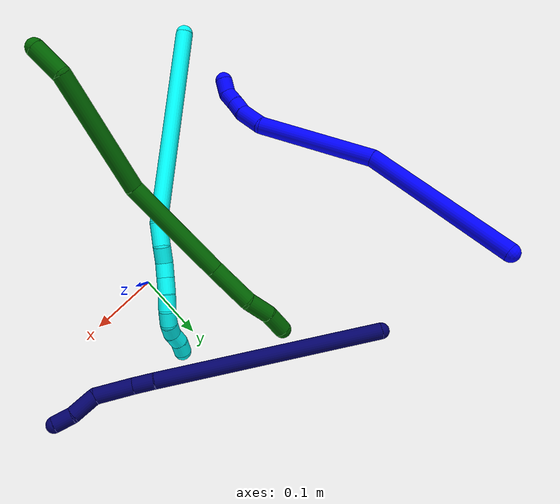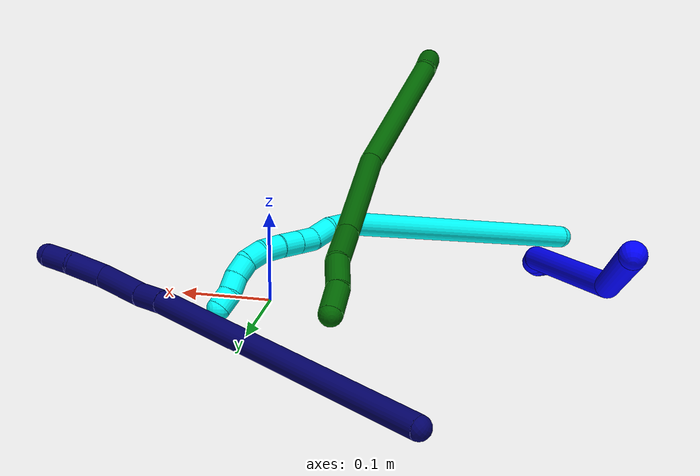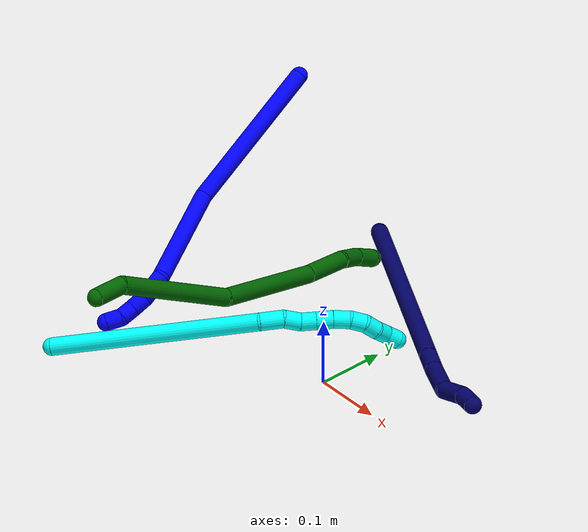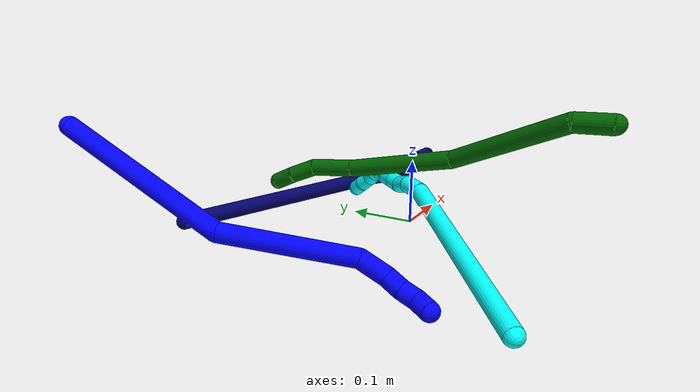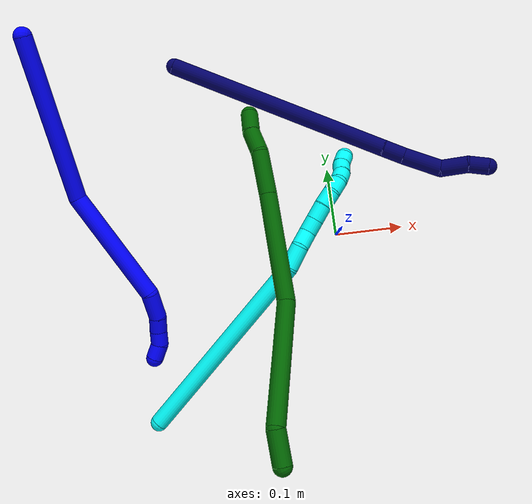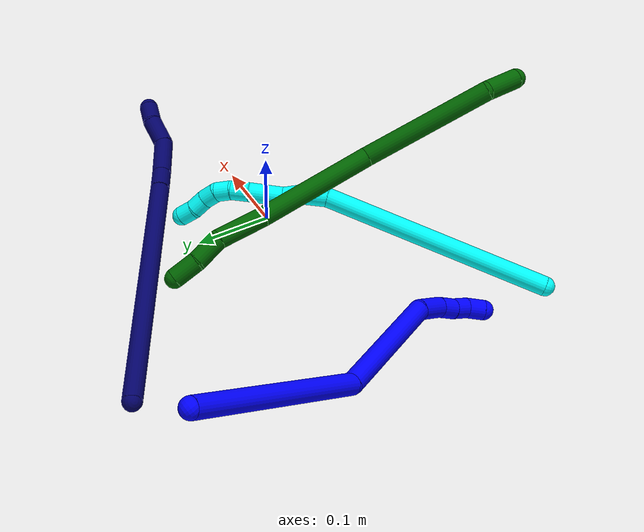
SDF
<sdf version="1.7">
 <world name="default">
  <model name="1">
   <static>0</static>
   <link name="1">
    <collision name="collision-cylinder-e_1_1_4">
     <pose>0.048468 -0.07131 -0.075218 2.38286 0.437412 1.01717</pose>
     <geometry><cylinder><radius>0.0125</radius><length>0.228841</length></cylinder></geometry>
     <surface>
      <friction><ode><mu>1.16</mu><mu2>1.16</mu2><slip1>0</slip1><slip2>0</slip2></ode></friction>
      <contact><ode><kp>1e+06</kp><kd>1</kd><max_vel>0</max_vel><min_depth>0.001</min_depth></ode></contact>
     </surface>
    </collision>
    <visual name="visual-cylinder-e_1_1_4">
     <pose>0.048468 -0.07131 -0.075218 2.38286 0.437412 1.01717</pose>
     <geometry><cylinder><radius>0.0125</radius><length>0.228841</length></cylinder></geometry>
     <material><ambient>0 0 1 1</ambient></material>
    </visual>
    <collision name="collision-cylinder-e_2_4_5">
     <pose>0.094325 -0.197481 -0.21391 2.42883 -0.031115 -0.083538</pose>
     <geometry><cylinder><radius>0.0125</radius><length>0.167875</length></cylinder></geometry>
     <surface>
      <friction><ode><mu>1.16</mu><mu2>1.16</mu2><slip1>0</slip1><slip2>0</slip2></ode></friction>
      <contact><ode><kp>1e+06</kp><kd>1</kd><max_vel>0</max_vel><min_depth>0.001</min_depth></ode></contact>
     </surface>
    </collision>
    <visual name="visual-cylinder-e_2_4_5">
     <pose>0.094325 -0.197481 -0.21391 2.42883 -0.031115 -0.083538</pose>
     <geometry><cylinder><radius>0.0125</radius><length>0.167875</length></cylinder></geometry>
     <material><ambient>0 0 1 1</ambient></material>
    </visual>
    <collision name="collision-cylinder-e_3_5_6">
     <pose>0.09937 -0.264411 -0.289961 2.3769 0.413858 0.962252</pose>
     <geometry><cylinder><radius>0.0125</radius><length>0.038077</length></cylinder></geometry>
     <surface>
      <friction><ode><mu>1.16</mu><mu2>1.16</mu2><slip1>0</slip1><slip2>0</slip2></ode></friction>
      <contact><ode><kp>1e+06</kp><kd>1</kd><max_vel>0</max_vel><min_depth>0.001</min_depth></ode></contact>
     </surface>
    </collision>
    <visual name="visual-cylinder-e_3_5_6">
     <pose>0.09937 -0.264411 -0.289961 2.3769 0.413858 0.962252</pose>
     <geometry><cylinder><radius>0.0125</radius><length>0.038077</length></cylinder></geometry>
     <material><ambient>0 0 1 1</ambient></material>
    </visual>
    <collision name="collision-cylinder-e_4_6_7">
     <pose>0.113656 -0.281678 -0.309768 2.5181 0.640002 1.59875</pose>
     <geometry><cylinder><radius>0.0125</radius><length>0.022202</length></cylinder></geometry>
     <surface>
      <friction><ode><mu>1.16</mu><mu2>1.16</mu2><slip1>0</slip1><slip2>0</slip2></ode></friction>
      <contact><ode><kp>1e+06</kp><kd>1</kd><max_vel>0</max_vel><min_depth>0.001</min_depth></ode></contact>
     </surface>
    </collision>
    <visual name="visual-cylinder-e_4_6_7">
     <pose>0.113656 -0.281678 -0.309768 2.5181 0.640002 1.59875</pose>
     <geometry><cylinder><radius>0.0125</radius><length>0.022202</length></cylinder></geometry>
     <material><ambient>0 0 1 1</ambient></material>
    </visual>
    <collision name="collision-cylinder-e_5_7_8">
     <pose>0.125444 -0.291468 -0.324789 2.60912 0.518392 1.54273</pose>
     <geometry><cylinder><radius>0.0125</radius><length>0.020824</length></cylinder></geometry>
     <surface>
      <friction><ode><mu>1.16</mu><mu2>1.16</mu2><slip1>0</slip1><slip2>0</slip2></ode></friction>
      <contact><ode><kp>1e+06</kp><kd>1</kd><max_vel>0</max_vel><min_depth>0.001</min_depth></ode></contact>
     </surface>
    </collision>
    <visual name="visual-cylinder-e_5_7_8">
     <pose>0.125444 -0.291468 -0.324789 2.60912 0.518392 1.54273</pose>
     <geometry><cylinder><radius>0.0125</radius><length>0.020824</length></cylinder></geometry>
     <material><ambient>0 0 1 1</ambient></material>
    </visual>
    <collision name="collision-cylinder-e_6_8_2">
     <pose>0.138305 -0.296747 -0.340531 3.05535 0.767705 2.92875</pose>
     <geometry><cylinder><radius>0.0125</radius><length>0.022182</length></cylinder></geometry>
     <surface>
      <friction><ode><mu>1.16</mu><mu2>1.16</mu2><slip1>0</slip1><slip2>0</slip2></ode></friction>
      <contact><ode><kp>1e+06</kp><kd>1</kd><max_vel>0</max_vel><min_depth>0.001</min_depth></ode></contact>
     </surface>
    </collision>
    <visual name="visual-cylinder-e_6_8_2">
     <pose>0.138305 -0.296747 -0.340531 3.05535 0.767705 2.92875</pose>
     <geometry><cylinder><radius>0.0125</radius><length>0.022182</length></cylinder></geometry>
     <material><ambient>0 0 1 1</ambient></material>
    </visual>
    <collision name="collision-sphere-2">
     <pose>0.146008 -0.297434 -0.348481 0 -0 0</pose>
     <geometry><sphere><radius>0.0125</radius></sphere></geometry>
     <surface>
      <friction><ode><mu>1.16</mu><mu2>1.16</mu2><slip1>0</slip1><slip2>0</slip2></ode></friction>
      <contact><ode><kp>1e+06</kp><kd>1</kd><max_vel>0</max_vel><min_depth>0.001</min_depth></ode></contact>
     </surface>
    </collision>
    <visual name="visual-sphere-2">
     <pose>0.146008 -0.297434 -0.348481 0 -0 0</pose>
     <geometry><sphere><radius>0.0125</radius></sphere></geometry>
     <material><ambient>0 0 1 1</ambient></material>
    </visual>
    <collision name="collision-sphere-4">
     <pose>0.096936 -0.142619 -0.150437 0 -0 0</pose>
     <geometry><sphere><radius>0.0125</radius></sphere></geometry>
     <surface>
      <friction><ode><mu>1.16</mu><mu2>1.16</mu2><slip1>0</slip1><slip2>0</slip2></ode></friction>
      <contact><ode><kp>1e+06</kp><kd>1</kd><max_vel>0</max_vel><min_depth>0.001</min_depth></ode></contact>
     </surface>
    </collision>
    <visual name="visual-sphere-4">
     <pose>0.096936 -0.142619 -0.150437 0 -0 0</pose>
     <geometry><sphere><radius>0.0125</radius></sphere></geometry>
     <material><ambient>0 0 1 1</ambient></material>
    </visual>
    <collision name="collision-sphere-1">
     <geometry><sphere><radius>0.0125</radius></sphere></geometry>
     <surface>
      <friction><ode><mu>1.16</mu><mu2>1.16</mu2><slip1>0</slip1><slip2>0</slip2></ode></friction>
      <contact><ode><kp>1e+06</kp><kd>1</kd><max_vel>0</max_vel><min_depth>0.001</min_depth></ode></contact>
     </surface>
    </collision>
    <visual name="visual-sphere-1">
     <geometry><sphere><radius>0.0125</radius></sphere></geometry>
     <material><ambient>0 0 1 1</ambient></material>
    </visual>
    <collision name="collision-sphere-8">
     <pose>0.130603 -0.29606 -0.33258 0 -0 0</pose>
     <geometry><sphere><radius>0.0125</radius></sphere></geometry>
     <surface>
      <friction><ode><mu>1.16</mu><mu2>1.16</mu2><slip1>0</slip1><slip2>0</slip2></ode></friction>
      <contact><ode><kp>1e+06</kp><kd>1</kd><max_vel>0</max_vel><min_depth>0.001</min_depth></ode></contact>
     </surface>
    </collision>
    <visual name="visual-sphere-8">
     <pose>0.130603 -0.29606 -0.33258 0 -0 0</pose>
     <geometry><sphere><radius>0.0125</radius></sphere></geometry>
     <material><ambient>0 0 1 1</ambient></material>
    </visual>
    <collision name="collision-sphere-5">
     <pose>0.091714 -0.252343 -0.277383 0 -0 0</pose>
     <geometry><sphere><radius>0.0125</radius></sphere></geometry>
     <surface>
      <friction><ode><mu>1.16</mu><mu2>1.16</mu2><slip1>0</slip1><slip2>0</slip2></ode></friction>
      <contact><ode><kp>1e+06</kp><kd>1</kd><max_vel>0</max_vel><min_depth>0.001</min_depth></ode></contact>
     </surface>
    </collision>
    <visual name="visual-sphere-5">
     <pose>0.091714 -0.252343 -0.277383 0 -0 0</pose>
     <geometry><sphere><radius>0.0125</radius></sphere></geometry>
     <material><ambient>0 0 1 1</ambient></material>
    </visual>
    <collision name="collision-sphere-6">
     <pose>0.107026 -0.27648 -0.30254 0 -0 0</pose>
     <geometry><sphere><radius>0.0125</radius></sphere></geometry>
     <surface>
      <friction><ode><mu>1.16</mu><mu2>1.16</mu2><slip1>0</slip1><slip2>0</slip2></ode></friction>
      <contact><ode><kp>1e+06</kp><kd>1</kd><max_vel>0</max_vel><min_depth>0.001</min_depth></ode></contact>
     </surface>
    </collision>
    <visual name="visual-sphere-6">
     <pose>0.107026 -0.27648 -0.30254 0 -0 0</pose>
     <geometry><sphere><radius>0.0125</radius></sphere></geometry>
     <material><ambient>0 0 1 1</ambient></material>
    </visual>
    <collision name="collision-sphere-7">
     <pose>0.120285 -0.286877 -0.316997 0 -0 0</pose>
     <geometry><sphere><radius>0.0125</radius></sphere></geometry>
     <surface>
      <friction><ode><mu>1.16</mu><mu2>1.16</mu2><slip1>0</slip1><slip2>0</slip2></ode></friction>
      <contact><ode><kp>1e+06</kp><kd>1</kd><max_vel>0</max_vel><min_depth>0.001</min_depth></ode></contact>
     </surface>
    </collision>
    <visual name="visual-sphere-7">
     <pose>0.120285 -0.286877 -0.316997 0 -0 0</pose>
     <geometry><sphere><radius>0.0125</radius></sphere></geometry>
     <material><ambient>0 0 1 1</ambient></material>
    </visual>
    <inertial>
     <pose>0.077827 -0.156889 -0.170717 0 -0 0</pose>
     <mass>0.5</mass>
     <inertia>
      <ixx>0.001643</ixx>
      <ixy>0</ixy>
      <ixz>0</ixz>
      <iyy>0.000293</iyy>
      <iyz>0</iyz>
      <izz>0.000448</izz>
     </inertia>
    </inertial>
   </link>
   <pose>-0.387751 0.288505 0.190858 2.02529 0.636379 -2.80656</pose>
  </model>
  <model name="3">
   <static>0</static>
   <link name="3">
    <collision name="collision-cylinder-e_1_1_4">
     <pose>-0.005827 -0.00252 -0.147366 3.1245 -0.039512 -2.32493</pose>
     <geometry><cylinder><radius>0.0125</radius><length>0.295006</length></cylinder></geometry>
     <surface>
      <friction><ode><mu>1.16</mu><mu2>1.16</mu2><slip1>0</slip1><slip2>0</slip2></ode></friction>
      <contact><ode><kp>1e+06</kp><kd>1</kd><max_vel>0</max_vel><min_depth>0.001</min_depth></ode></contact>
     </surface>
    </collision>
    <visual name="visual-cylinder-e_1_1_4">
     <pose>-0.005827 -0.00252 -0.147366 3.1245 -0.039512 -2.32493</pose>
     <geometry><cylinder><radius>0.0125</radius><length>0.295006</length></cylinder></geometry>
     <material><ambient>0.003922 1 0.996078 1</ambient></material>
    </visual>
    <collision name="collision-cylinder-e_2_4_5">
     <pose>-0.007733 -0.005914 -0.310578 3.08644 0.242151 2.69575</pose>
     <geometry><cylinder><radius>0.0125</radius><length>0.032694</length></cylinder></geometry>
     <surface>
      <friction><ode><mu>1.16</mu><mu2>1.16</mu2><slip1>0</slip1><slip2>0</slip2></ode></friction>
      <contact><ode><kp>1e+06</kp><kd>1</kd><max_vel>0</max_vel><min_depth>0.001</min_depth></ode></contact>
     </surface>
    </collision>
    <visual name="visual-cylinder-e_2_4_5">
     <pose>-0.007733 -0.005914 -0.310578 3.08644 0.242151 2.69575</pose>
     <geometry><cylinder><radius>0.0125</radius><length>0.032694</length></cylinder></geometry>
     <material><ambient>0.003922 1 0.996078 1</ambient></material>
    </visual>
    <collision name="collision-cylinder-e_3_5_6">
     <pose>0.001224 -0.004181 -0.336895 -2.89754 0.436748 -2.13187</pose>
     <geometry><cylinder><radius>0.0125</radius><length>0.023818</length></cylinder></geometry>
     <surface>
      <friction><ode><mu>1.16</mu><mu2>1.16</mu2><slip1>0</slip1><slip2>0</slip2></ode></friction>
      <contact><ode><kp>1e+06</kp><kd>1</kd><max_vel>0</max_vel><min_depth>0.001</min_depth></ode></contact>
     </surface>
    </collision>
    <visual name="visual-cylinder-e_3_5_6">
     <pose>0.001224 -0.004181 -0.336895 -2.89754 0.436748 -2.13187</pose>
     <geometry><cylinder><radius>0.0125</radius><length>0.023818</length></cylinder></geometry>
     <material><ambient>0.003922 1 0.996078 1</ambient></material>
    </visual>
    <collision name="collision-cylinder-e_4_6_7">
     <pose>0.008571 -0.001593 -0.357797 3.13978 0.217905 3.12497</pose>
     <geometry><cylinder><radius>0.0125</radius><length>0.021366</length></cylinder></geometry>
     <surface>
      <friction><ode><mu>1.16</mu><mu2>1.16</mu2><slip1>0</slip1><slip2>0</slip2></ode></friction>
      <contact><ode><kp>1e+06</kp><kd>1</kd><max_vel>0</max_vel><min_depth>0.001</min_depth></ode></contact>
     </surface>
    </collision>
    <visual name="visual-cylinder-e_4_6_7">
     <pose>0.008571 -0.001593 -0.357797 3.13978 0.217905 3.12497</pose>
     <geometry><cylinder><radius>0.0125</radius><length>0.021366</length></cylinder></geometry>
     <material><ambient>0.003922 1 0.996078 1</ambient></material>
    </visual>
    <collision name="collision-cylinder-e_5_7_8">
     <pose>0.013365 -0.001758 -0.379652 3.1288 0.214151 3.02276</pose>
     <geometry><cylinder><radius>0.0125</radius><length>0.023385</length></cylinder></geometry>
     <surface>
      <friction><ode><mu>1.16</mu><mu2>1.16</mu2><slip1>0</slip1><slip2>0</slip2></ode></friction>
      <contact><ode><kp>1e+06</kp><kd>1</kd><max_vel>0</max_vel><min_depth>0.001</min_depth></ode></contact>
     </surface>
    </collision>
    <visual name="visual-cylinder-e_5_7_8">
     <pose>0.013365 -0.001758 -0.379652 3.1288 0.214151 3.02276</pose>
     <geometry><cylinder><radius>0.0125</radius><length>0.023385</length></cylinder></geometry>
     <material><ambient>0.003922 1 0.996078 1</ambient></material>
    </visual>
    <collision name="collision-cylinder-e_6_8_9">
     <pose>0.018372 -0.000761 -0.402277 -3.03991 0.220363 -2.27936</pose>
     <geometry><cylinder><radius>0.0125</radius><length>0.023076</length></cylinder></geometry>
     <surface>
      <friction><ode><mu>1.16</mu><mu2>1.16</mu2><slip1>0</slip1><slip2>0</slip2></ode></friction>
      <contact><ode><kp>1e+06</kp><kd>1</kd><max_vel>0</max_vel><min_depth>0.001</min_depth></ode></contact>
     </surface>
    </collision>
    <visual name="visual-cylinder-e_6_8_9">
     <pose>0.018372 -0.000761 -0.402277 -3.03991 0.220363 -2.27936</pose>
     <geometry><cylinder><radius>0.0125</radius><length>0.023076</length></cylinder></geometry>
     <material><ambient>0.003922 1 0.996078 1</ambient></material>
    </visual>
    <collision name="collision-cylinder-e_7_9_10">
     <pose>0.025058 0.003279 -0.422403 -2.8277 0.417658 -1.85878</pose>
     <geometry><cylinder><radius>0.0125</radius><length>0.020531</length></cylinder></geometry>
     <surface>
      <friction><ode><mu>1.16</mu><mu2>1.16</mu2><slip1>0</slip1><slip2>0</slip2></ode></friction>
      <contact><ode><kp>1e+06</kp><kd>1</kd><max_vel>0</max_vel><min_depth>0.001</min_depth></ode></contact>
     </surface>
    </collision>
    <visual name="visual-cylinder-e_7_9_10">
     <pose>0.025058 0.003279 -0.422403 -2.8277 0.417658 -1.85878</pose>
     <geometry><cylinder><radius>0.0125</radius><length>0.020531</length></cylinder></geometry>
     <material><ambient>0.003922 1 0.996078 1</ambient></material>
    </visual>
    <collision name="collision-cylinder-e_8_10_11">
     <pose>0.035792 0.010656 -0.437461 -2.51075 0.713107 -1.70271</pose>
     <geometry><cylinder><radius>0.0125</radius><length>0.020085</length></cylinder></geometry>
     <surface>
      <friction><ode><mu>1.16</mu><mu2>1.16</mu2><slip1>0</slip1><slip2>0</slip2></ode></friction>
      <contact><ode><kp>1e+06</kp><kd>1</kd><max_vel>0</max_vel><min_depth>0.001</min_depth></ode></contact>
     </surface>
    </collision>
    <visual name="visual-cylinder-e_8_10_11">
     <pose>0.035792 0.010656 -0.437461 -2.51075 0.713107 -1.70271</pose>
     <geometry><cylinder><radius>0.0125</radius><length>0.020085</length></cylinder></geometry>
     <material><ambient>0.003922 1 0.996078 1</ambient></material>
    </visual>
    <collision name="collision-cylinder-e_9_11_12">
     <pose>0.050691 0.017739 -0.448487 -2.65263 0.983787 -2.27012</pose>
     <geometry><cylinder><radius>0.0125</radius><length>0.020009</length></cylinder></geometry>
     <surface>
      <friction><ode><mu>1.16</mu><mu2>1.16</mu2><slip1>0</slip1><slip2>0</slip2></ode></friction>
      <contact><ode><kp>1e+06</kp><kd>1</kd><max_vel>0</max_vel><min_depth>0.001</min_depth></ode></contact>
     </surface>
    </collision>
    <visual name="visual-cylinder-e_9_11_12">
     <pose>0.050691 0.017739 -0.448487 -2.65263 0.983787 -2.27012</pose>
     <geometry><cylinder><radius>0.0125</radius><length>0.020009</length></cylinder></geometry>
     <material><ambient>0.003922 1 0.996078 1</ambient></material>
    </visual>
    <collision name="collision-cylinder-e_10_12_2">
     <pose>0.065573 0.024146 -0.459929 -2.6155 0.713093 -1.88961</pose>
     <geometry><cylinder><radius>0.0125</radius><length>0.02003</length></cylinder></geometry>
     <surface>
      <friction><ode><mu>1.16</mu><mu2>1.16</mu2><slip1>0</slip1><slip2>0</slip2></ode></friction>
      <contact><ode><kp>1e+06</kp><kd>1</kd><max_vel>0</max_vel><min_depth>0.001</min_depth></ode></contact>
     </surface>
    </collision>
    <visual name="visual-cylinder-e_10_12_2">
     <pose>0.065573 0.024146 -0.459929 -2.6155 0.713093 -1.88961</pose>
     <geometry><cylinder><radius>0.0125</radius><length>0.02003</length></cylinder></geometry>
     <material><ambient>0.003922 1 0.996078 1</ambient></material>
    </visual>
    <collision name="collision-sphere-2">
     <pose>0.072124 0.027949 -0.46648 0 -0 0</pose>
     <geometry><sphere><radius>0.0125</radius></sphere></geometry>
     <surface>
      <friction><ode><mu>1.16</mu><mu2>1.16</mu2><slip1>0</slip1><slip2>0</slip2></ode></friction>
      <contact><ode><kp>1e+06</kp><kd>1</kd><max_vel>0</max_vel><min_depth>0.001</min_depth></ode></contact>
     </surface>
    </collision>
    <visual name="visual-sphere-2">
     <pose>0.072124 0.027949 -0.46648 0 -0 0</pose>
     <geometry><sphere><radius>0.0125</radius></sphere></geometry>
     <material><ambient>0.003922 1 0.996078 1</ambient></material>
    </visual>
    <collision name="collision-sphere-12">
     <pose>0.059021 0.020342 -0.453379 0 -0 0</pose>
     <geometry><sphere><radius>0.0125</radius></sphere></geometry>
     <surface>
      <friction><ode><mu>1.16</mu><mu2>1.16</mu2><slip1>0</slip1><slip2>0</slip2></ode></friction>
      <contact><ode><kp>1e+06</kp><kd>1</kd><max_vel>0</max_vel><min_depth>0.001</min_depth></ode></contact>
     </surface>
    </collision>
    <visual name="visual-sphere-12">
     <pose>0.059021 0.020342 -0.453379 0 -0 0</pose>
     <geometry><sphere><radius>0.0125</radius></sphere></geometry>
     <material><ambient>0.003922 1 0.996078 1</ambient></material>
    </visual>
    <collision name="collision-sphere-11">
     <pose>0.042361 0.015136 -0.443595 0 -0 0</pose>
     <geometry><sphere><radius>0.0125</radius></sphere></geometry>
     <surface>
      <friction><ode><mu>1.16</mu><mu2>1.16</mu2><slip1>0</slip1><slip2>0</slip2></ode></friction>
      <contact><ode><kp>1e+06</kp><kd>1</kd><max_vel>0</max_vel><min_depth>0.001</min_depth></ode></contact>
     </surface>
    </collision>
    <visual name="visual-sphere-11">
     <pose>0.042361 0.015136 -0.443595 0 -0 0</pose>
     <geometry><sphere><radius>0.0125</radius></sphere></geometry>
     <material><ambient>0.003922 1 0.996078 1</ambient></material>
    </visual>
    <collision name="collision-sphere-10">
     <pose>0.029222 0.006176 -0.431327 0 -0 0</pose>
     <geometry><sphere><radius>0.0125</radius></sphere></geometry>
     <surface>
      <friction><ode><mu>1.16</mu><mu2>1.16</mu2><slip1>0</slip1><slip2>0</slip2></ode></friction>
      <contact><ode><kp>1e+06</kp><kd>1</kd><max_vel>0</max_vel><min_depth>0.001</min_depth></ode></contact>
     </surface>
    </collision>
    <visual name="visual-sphere-10">
     <pose>0.029222 0.006176 -0.431327 0 -0 0</pose>
     <geometry><sphere><radius>0.0125</radius></sphere></geometry>
     <material><ambient>0.003922 1 0.996078 1</ambient></material>
    </visual>
    <collision name="collision-sphere-9">
     <pose>0.020894 0.000382 -0.413478 0 -0 0</pose>
     <geometry><sphere><radius>0.0125</radius></sphere></geometry>
     <surface>
      <friction><ode><mu>1.16</mu><mu2>1.16</mu2><slip1>0</slip1><slip2>0</slip2></ode></friction>
      <contact><ode><kp>1e+06</kp><kd>1</kd><max_vel>0</max_vel><min_depth>0.001</min_depth></ode></contact>
     </surface>
    </collision>
    <visual name="visual-sphere-9">
     <pose>0.020894 0.000382 -0.413478 0 -0 0</pose>
     <geometry><sphere><radius>0.0125</radius></sphere></geometry>
     <material><ambient>0.003922 1 0.996078 1</ambient></material>
    </visual>
    <collision name="collision-sphere-4">
     <pose>-0.011653 -0.005039 -0.294733 0 -0 0</pose>
     <geometry><sphere><radius>0.0125</radius></sphere></geometry>
     <surface>
      <friction><ode><mu>1.16</mu><mu2>1.16</mu2><slip1>0</slip1><slip2>0</slip2></ode></friction>
      <contact><ode><kp>1e+06</kp><kd>1</kd><max_vel>0</max_vel><min_depth>0.001</min_depth></ode></contact>
     </surface>
    </collision>
    <visual name="visual-sphere-4">
     <pose>-0.011653 -0.005039 -0.294733 0 -0 0</pose>
     <geometry><sphere><radius>0.0125</radius></sphere></geometry>
     <material><ambient>0.003922 1 0.996078 1</ambient></material>
    </visual>
    <collision name="collision-sphere-1">
     <geometry><sphere><radius>0.0125</radius></sphere></geometry>
     <surface>
      <friction><ode><mu>1.16</mu><mu2>1.16</mu2><slip1>0</slip1><slip2>0</slip2></ode></friction>
      <contact><ode><kp>1e+06</kp><kd>1</kd><max_vel>0</max_vel><min_depth>0.001</min_depth></ode></contact>
     </surface>
    </collision>
    <visual name="visual-sphere-1">
     <geometry><sphere><radius>0.0125</radius></sphere></geometry>
     <material><ambient>0.003922 1 0.996078 1</ambient></material>
    </visual>
    <collision name="collision-sphere-8">
     <pose>0.01585 -0.001904 -0.391077 0 -0 0</pose>
     <geometry><sphere><radius>0.0125</radius></sphere></geometry>
     <surface>
      <friction><ode><mu>1.16</mu><mu2>1.16</mu2><slip1>0</slip1><slip2>0</slip2></ode></friction>
      <contact><ode><kp>1e+06</kp><kd>1</kd><max_vel>0</max_vel><min_depth>0.001</min_depth></ode></contact>
     </surface>
    </collision>
    <visual name="visual-sphere-8">
     <pose>0.01585 -0.001904 -0.391077 0 -0 0</pose>
     <geometry><sphere><radius>0.0125</radius></sphere></geometry>
     <material><ambient>0.003922 1 0.996078 1</ambient></material>
    </visual>
    <collision name="collision-sphere-5">
     <pose>-0.003814 -0.006789 -0.326424 0 -0 0</pose>
     <geometry><sphere><radius>0.0125</radius></sphere></geometry>
     <surface>
      <friction><ode><mu>1.16</mu><mu2>1.16</mu2><slip1>0</slip1><slip2>0</slip2></ode></friction>
      <contact><ode><kp>1e+06</kp><kd>1</kd><max_vel>0</max_vel><min_depth>0.001</min_depth></ode></contact>
     </surface>
    </collision>
    <visual name="visual-sphere-5">
     <pose>-0.003814 -0.006789 -0.326424 0 -0 0</pose>
     <geometry><sphere><radius>0.0125</radius></sphere></geometry>
     <material><ambient>0.003922 1 0.996078 1</ambient></material>
    </visual>
    <collision name="collision-sphere-6">
     <pose>0.006261 -0.001574 -0.347367 0 -0 0</pose>
     <geometry><sphere><radius>0.0125</radius></sphere></geometry>
     <surface>
      <friction><ode><mu>1.16</mu><mu2>1.16</mu2><slip1>0</slip1><slip2>0</slip2></ode></friction>
      <contact><ode><kp>1e+06</kp><kd>1</kd><max_vel>0</max_vel><min_depth>0.001</min_depth></ode></contact>
     </surface>
    </collision>
    <visual name="visual-sphere-6">
     <pose>0.006261 -0.001574 -0.347367 0 -0 0</pose>
     <geometry><sphere><radius>0.0125</radius></sphere></geometry>
     <material><ambient>0.003922 1 0.996078 1</ambient></material>
    </visual>
    <collision name="collision-sphere-7">
     <pose>0.01088 -0.001612 -0.368227 0 -0 0</pose>
     <geometry><sphere><radius>0.0125</radius></sphere></geometry>
     <surface>
      <friction><ode><mu>1.16</mu><mu2>1.16</mu2><slip1>0</slip1><slip2>0</slip2></ode></friction>
      <contact><ode><kp>1e+06</kp><kd>1</kd><max_vel>0</max_vel><min_depth>0.001</min_depth></ode></contact>
     </surface>
    </collision>
    <visual name="visual-sphere-7">
     <pose>0.01088 -0.001612 -0.368227 0 -0 0</pose>
     <geometry><sphere><radius>0.0125</radius></sphere></geometry>
     <material><ambient>0.003922 1 0.996078 1</ambient></material>
    </visual>
    <inertial>
     <pose>0.005076 -1.8e-05 -0.246206 0 -0 0</pose>
     <mass>0.5</mass>
     <inertia>
      <ixx>-0.003048</ixx>
      <ixy>0</ixy>
      <ixz>0</ixz>
      <iyy>-8.3e-05</iyy>
      <iyz>0</iyz>
      <izz>7.6e-05</izz>
     </inertia>
    </inertial>
   </link>
   <pose>-0.292019 -0.238765 0.011498 -1.81904 0.687266 2.16742</pose>
  </model>
  <model name="6">
   <static>0</static>
   <link name="6">
    <collision name="collision-cylinder-e_1_1_4">
     <pose>-0.004193 0.004136 -0.021463 -2.95123 -0.189546 1.56645</pose>
     <geometry><cylinder><radius>0.0125</radius><length>0.044513</length></cylinder></geometry>
     <surface>
      <friction><ode><mu>1.16</mu><mu2>1.16</mu2><slip1>0</slip1><slip2>0</slip2></ode></friction>
      <contact><ode><kp>1e+06</kp><kd>1</kd><max_vel>0</max_vel><min_depth>0.001</min_depth></ode></contact>
     </surface>
    </collision>
    <visual name="visual-cylinder-e_1_1_4">
     <pose>-0.004193 0.004136 -0.021463 -2.95123 -0.189546 1.56645</pose>
     <geometry><cylinder><radius>0.0125</radius><length>0.044513</length></cylinder></geometry>
     <material><ambient>0 0.392157 0.003922 1</ambient></material>
    </visual>
    <collision name="collision-cylinder-e_2_4_5">
     <pose>-0.021485 0.060479 -0.107774 -2.46376 -0.156055 0.43652</pose>
     <geometry><cylinder><radius>0.0125</radius><length>0.168551</length></cylinder></geometry>
     <surface>
      <friction><ode><mu>1.16</mu><mu2>1.16</mu2><slip1>0</slip1><slip2>0</slip2></ode></friction>
      <contact><ode><kp>1e+06</kp><kd>1</kd><max_vel>0</max_vel><min_depth>0.001</min_depth></ode></contact>
     </surface>
    </collision>
    <visual name="visual-cylinder-e_2_4_5">
     <pose>-0.021485 0.060479 -0.107774 -2.46376 -0.156055 0.43652</pose>
     <geometry><cylinder><radius>0.0125</radius><length>0.168551</length></cylinder></geometry>
     <material><ambient>0 0.392157 0.003922 1</ambient></material>
    </visual>
    <collision name="collision-cylinder-e_3_5_6">
     <pose>-0.042538 0.138914 -0.244042 -2.78966 -0.104175 0.570432</pose>
     <geometry><cylinder><radius>0.0125</radius><length>0.152999</length></cylinder></geometry>
     <surface>
      <friction><ode><mu>1.16</mu><mu2>1.16</mu2><slip1>0</slip1><slip2>0</slip2></ode></friction>
      <contact><ode><kp>1e+06</kp><kd>1</kd><max_vel>0</max_vel><min_depth>0.001</min_depth></ode></contact>
     </surface>
    </collision>
    <visual name="visual-cylinder-e_3_5_6">
     <pose>-0.042538 0.138914 -0.244042 -2.78966 -0.104175 0.570432</pose>
     <geometry><cylinder><radius>0.0125</radius><length>0.152999</length></cylinder></geometry>
     <material><ambient>0 0.392157 0.003922 1</ambient></material>
    </visual>
    <collision name="collision-cylinder-e_4_6_7">
     <pose>-0.055073 0.172616 -0.345882 -2.90065 -0.145185 1.08187</pose>
     <geometry><cylinder><radius>0.0125</radius><length>0.063313</length></cylinder></geometry>
     <surface>
      <friction><ode><mu>1.16</mu><mu2>1.16</mu2><slip1>0</slip1><slip2>0</slip2></ode></friction>
      <contact><ode><kp>1e+06</kp><kd>1</kd><max_vel>0</max_vel><min_depth>0.001</min_depth></ode></contact>
     </surface>
    </collision>
    <visual name="visual-cylinder-e_4_6_7">
     <pose>-0.055073 0.172616 -0.345882 -2.90065 -0.145185 1.08187</pose>
     <geometry><cylinder><radius>0.0125</radius><length>0.063313</length></cylinder></geometry>
     <material><ambient>0 0.392157 0.003922 1</ambient></material>
    </visual>
    <collision name="collision-cylinder-e_5_7_8">
     <pose>-0.056675 0.187243 -0.39317 -2.7406 0.161144 -0.756391</pose>
     <geometry><cylinder><radius>0.0125</radius><length>0.037127</length></cylinder></geometry>
     <surface>
      <friction><ode><mu>1.16</mu><mu2>1.16</mu2><slip1>0</slip1><slip2>0</slip2></ode></friction>
      <contact><ode><kp>1e+06</kp><kd>1</kd><max_vel>0</max_vel><min_depth>0.001</min_depth></ode></contact>
     </surface>
    </collision>
    <visual name="visual-cylinder-e_5_7_8">
     <pose>-0.056675 0.187243 -0.39317 -2.7406 0.161144 -0.756391</pose>
     <geometry><cylinder><radius>0.0125</radius><length>0.037127</length></cylinder></geometry>
     <material><ambient>0 0.392157 0.003922 1</ambient></material>
    </visual>
    <collision name="collision-cylinder-e_6_8_2">
     <pose>-0.053605 0.203644 -0.424002 -2.55654 0.005451 -0.018098</pose>
     <geometry><cylinder><radius>0.0125</radius><length>0.033497</length></cylinder></geometry>
     <surface>
      <friction><ode><mu>1.16</mu><mu2>1.16</mu2><slip1>0</slip1><slip2>0</slip2></ode></friction>
      <contact><ode><kp>1e+06</kp><kd>1</kd><max_vel>0</max_vel><min_depth>0.001</min_depth></ode></contact>
     </surface>
    </collision>
    <visual name="visual-cylinder-e_6_8_2">
     <pose>-0.053605 0.203644 -0.424002 -2.55654 0.005451 -0.018098</pose>
     <geometry><cylinder><radius>0.0125</radius><length>0.033497</length></cylinder></geometry>
     <material><ambient>0 0.392157 0.003922 1</ambient></material>
    </visual>
    <collision name="collision-sphere-2">
     <pose>-0.053513 0.212893 -0.437965 0 -0 0</pose>
     <geometry><sphere><radius>0.0125</radius></sphere></geometry>
     <surface>
      <friction><ode><mu>1.16</mu><mu2>1.16</mu2><slip1>0</slip1><slip2>0</slip2></ode></friction>
      <contact><ode><kp>1e+06</kp><kd>1</kd><max_vel>0</max_vel><min_depth>0.001</min_depth></ode></contact>
     </surface>
    </collision>
    <visual name="visual-sphere-2">
     <pose>-0.053513 0.212893 -0.437965 0 -0 0</pose>
     <geometry><sphere><radius>0.0125</radius></sphere></geometry>
     <material><ambient>0 0.392157 0.003922 1</ambient></material>
    </visual>
    <collision name="collision-sphere-4">
     <pose>-0.008387 0.008272 -0.042926 0 -0 0</pose>
     <geometry><sphere><radius>0.0125</radius></sphere></geometry>
     <surface>
      <friction><ode><mu>1.16</mu><mu2>1.16</mu2><slip1>0</slip1><slip2>0</slip2></ode></friction>
      <contact><ode><kp>1e+06</kp><kd>1</kd><max_vel>0</max_vel><min_depth>0.001</min_depth></ode></contact>
     </surface>
    </collision>
    <visual name="visual-sphere-4">
     <pose>-0.008387 0.008272 -0.042926 0 -0 0</pose>
     <geometry><sphere><radius>0.0125</radius></sphere></geometry>
     <material><ambient>0 0.392157 0.003922 1</ambient></material>
    </visual>
    <collision name="collision-sphere-1">
     <geometry><sphere><radius>0.0125</radius></sphere></geometry>
     <surface>
      <friction><ode><mu>1.16</mu><mu2>1.16</mu2><slip1>0</slip1><slip2>0</slip2></ode></friction>
      <contact><ode><kp>1e+06</kp><kd>1</kd><max_vel>0</max_vel><min_depth>0.001</min_depth></ode></contact>
     </surface>
    </collision>
    <visual name="visual-sphere-1">
     <geometry><sphere><radius>0.0125</radius></sphere></geometry>
     <material><ambient>0 0.392157 0.003922 1</ambient></material>
    </visual>
    <collision name="collision-sphere-8">
     <pose>-0.053696 0.194395 -0.41004 0 -0 0</pose>
     <geometry><sphere><radius>0.0125</radius></sphere></geometry>
     <surface>
      <friction><ode><mu>1.16</mu><mu2>1.16</mu2><slip1>0</slip1><slip2>0</slip2></ode></friction>
      <contact><ode><kp>1e+06</kp><kd>1</kd><max_vel>0</max_vel><min_depth>0.001</min_depth></ode></contact>
     </surface>
    </collision>
    <visual name="visual-sphere-8">
     <pose>-0.053696 0.194395 -0.41004 0 -0 0</pose>
     <geometry><sphere><radius>0.0125</radius></sphere></geometry>
     <material><ambient>0 0.392157 0.003922 1</ambient></material>
    </visual>
    <collision name="collision-sphere-5">
     <pose>-0.034583 0.112687 -0.172621 0 -0 0</pose>
     <geometry><sphere><radius>0.0125</radius></sphere></geometry>
     <surface>
      <friction><ode><mu>1.16</mu><mu2>1.16</mu2><slip1>0</slip1><slip2>0</slip2></ode></friction>
      <contact><ode><kp>1e+06</kp><kd>1</kd><max_vel>0</max_vel><min_depth>0.001</min_depth></ode></contact>
     </surface>
    </collision>
    <visual name="visual-sphere-5">
     <pose>-0.034583 0.112687 -0.172621 0 -0 0</pose>
     <geometry><sphere><radius>0.0125</radius></sphere></geometry>
     <material><ambient>0 0.392157 0.003922 1</ambient></material>
    </visual>
    <collision name="collision-sphere-6">
     <pose>-0.050493 0.165142 -0.315463 0 -0 0</pose>
     <geometry><sphere><radius>0.0125</radius></sphere></geometry>
     <surface>
      <friction><ode><mu>1.16</mu><mu2>1.16</mu2><slip1>0</slip1><slip2>0</slip2></ode></friction>
      <contact><ode><kp>1e+06</kp><kd>1</kd><max_vel>0</max_vel><min_depth>0.001</min_depth></ode></contact>
     </surface>
    </collision>
    <visual name="visual-sphere-6">
     <pose>-0.050493 0.165142 -0.315463 0 -0 0</pose>
     <geometry><sphere><radius>0.0125</radius></sphere></geometry>
     <material><ambient>0 0.392157 0.003922 1</ambient></material>
    </visual>
    <collision name="collision-sphere-7">
     <pose>-0.059653 0.180091 -0.3763 0 -0 0</pose>
     <geometry><sphere><radius>0.0125</radius></sphere></geometry>
     <surface>
      <friction><ode><mu>1.16</mu><mu2>1.16</mu2><slip1>0</slip1><slip2>0</slip2></ode></friction>
      <contact><ode><kp>1e+06</kp><kd>1</kd><max_vel>0</max_vel><min_depth>0.001</min_depth></ode></contact>
     </surface>
    </collision>
    <visual name="visual-sphere-7">
     <pose>-0.059653 0.180091 -0.3763 0 -0 0</pose>
     <geometry><sphere><radius>0.0125</radius></sphere></geometry>
     <material><ambient>0 0.392157 0.003922 1</ambient></material>
    </visual>
    <inertial>
     <pose>-0.035406 0.112668 -0.214315 0 -0 0</pose>
     <mass>0.5</mass>
     <inertia>
      <ixx>0.000992</ixx>
      <ixy>0</ixy>
      <ixz>0</ixz>
      <iyy>-0.000146</iyy>
      <iyz>0</iyz>
      <izz>-0.000303</izz>
     </inertia>
    </inertial>
   </link>
   <pose>-0.122944 -0.288504 0.204899 -1.60602 0.574685 -2.84581</pose>
  </model>
  <model name="7">
   <static>0</static>
   <link name="7">
    <collision name="collision-cylinder-e_1_1_4">
     <pose>0.136685 -0.046613 0.092307 0.467622 0.923118 0.235825</pose>
     <geometry><cylinder><radius>0.0125</radius><length>0.342789</length></cylinder></geometry>
     <surface>
      <friction><ode><mu>1.16</mu><mu2>1.16</mu2><slip1>0</slip1><slip2>0</slip2></ode></friction>
      <contact><ode><kp>1e+06</kp><kd>1</kd><max_vel>0</max_vel><min_depth>0.001</min_depth></ode></contact>
     </surface>
    </collision>
    <visual name="visual-cylinder-e_1_1_4">
     <pose>0.136685 -0.046613 0.092307 0.467622 0.923118 0.235825</pose>
     <geometry><cylinder><radius>0.0125</radius><length>0.342789</length></cylinder></geometry>
     <material><ambient>0.003922 0 0.403922 1</ambient></material>
    </visual>
    <collision name="collision-cylinder-e_2_4_5">
     <pose>0.285309 -0.097011 0.194522 0.364866 0.84445 0.165379</pose>
     <geometry><cylinder><radius>0.0125</radius><length>0.03194</length></cylinder></geometry>
     <surface>
      <friction><ode><mu>1.16</mu><mu2>1.16</mu2><slip1>0</slip1><slip2>0</slip2></ode></friction>
      <contact><ode><kp>1e+06</kp><kd>1</kd><max_vel>0</max_vel><min_depth>0.001</min_depth></ode></contact>
     </surface>
    </collision>
    <visual name="visual-cylinder-e_2_4_5">
     <pose>0.285309 -0.097011 0.194522 0.364866 0.84445 0.165379</pose>
     <geometry><cylinder><radius>0.0125</radius><length>0.03194</length></cylinder></geometry>
     <material><ambient>0.003922 0 0.403922 1</ambient></material>
    </visual>
    <collision name="collision-cylinder-e_3_5_6">
     <pose>0.319835 -0.110016 0.219505 0.548957 0.906899 0.272739</pose>
     <geometry><cylinder><radius>0.0125</radius><length>0.057355</length></cylinder></geometry>
     <surface>
      <friction><ode><mu>1.16</mu><mu2>1.16</mu2><slip1>0</slip1><slip2>0</slip2></ode></friction>
      <contact><ode><kp>1e+06</kp><kd>1</kd><max_vel>0</max_vel><min_depth>0.001</min_depth></ode></contact>
     </surface>
    </collision>
    <visual name="visual-cylinder-e_3_5_6">
     <pose>0.319835 -0.110016 0.219505 0.548957 0.906899 0.272739</pose>
     <geometry><cylinder><radius>0.0125</radius><length>0.057355</length></cylinder></geometry>
     <material><ambient>0.003922 0 0.403922 1</ambient></material>
    </visual>
    <collision name="collision-cylinder-e_4_6_7">
     <pose>0.352556 -0.133467 0.243808 0.995501 0.538583 0.297725</pose>
     <geometry><cylinder><radius>0.0125</radius><length>0.039516</length></cylinder></geometry>
     <surface>
      <friction><ode><mu>1.16</mu><mu2>1.16</mu2><slip1>0</slip1><slip2>0</slip2></ode></friction>
      <contact><ode><kp>1e+06</kp><kd>1</kd><max_vel>0</max_vel><min_depth>0.001</min_depth></ode></contact>
     </surface>
    </collision>
    <visual name="visual-cylinder-e_4_6_7">
     <pose>0.352556 -0.133467 0.243808 0.995501 0.538583 0.297725</pose>
     <geometry><cylinder><radius>0.0125</radius><length>0.039516</length></cylinder></geometry>
     <material><ambient>0.003922 0 0.403922 1</ambient></material>
    </visual>
    <collision name="collision-cylinder-e_5_7_2">
     <pose>0.371927 -0.154649 0.261282 0.700411 0.708234 0.268451</pose>
     <geometry><cylinder><radius>0.0125</radius><length>0.028399</length></cylinder></geometry>
     <surface>
      <friction><ode><mu>1.16</mu><mu2>1.16</mu2><slip1>0</slip1><slip2>0</slip2></ode></friction>
      <contact><ode><kp>1e+06</kp><kd>1</kd><max_vel>0</max_vel><min_depth>0.001</min_depth></ode></contact>
     </surface>
    </collision>
    <visual name="visual-cylinder-e_5_7_2">
     <pose>0.371927 -0.154649 0.261282 0.700411 0.708234 0.268451</pose>
     <geometry><cylinder><radius>0.0125</radius><length>0.028399</length></cylinder></geometry>
     <material><ambient>0.003922 0 0.403922 1</ambient></material>
    </visual>
    <collision name="collision-sphere-2">
     <pose>0.381164 -0.1616 0.269527 0 -0 0</pose>
     <geometry><sphere><radius>0.0125</radius></sphere></geometry>
     <surface>
      <friction><ode><mu>1.16</mu><mu2>1.16</mu2><slip1>0</slip1><slip2>0</slip2></ode></friction>
      <contact><ode><kp>1e+06</kp><kd>1</kd><max_vel>0</max_vel><min_depth>0.001</min_depth></ode></contact>
     </surface>
    </collision>
    <visual name="visual-sphere-2">
     <pose>0.381164 -0.1616 0.269527 0 -0 0</pose>
     <geometry><sphere><radius>0.0125</radius></sphere></geometry>
     <material><ambient>0.003922 0 0.403922 1</ambient></material>
    </visual>
    <collision name="collision-sphere-7">
     <pose>0.36269 -0.147698 0.253036 0 -0 0</pose>
     <geometry><sphere><radius>0.0125</radius></sphere></geometry>
     <surface>
      <friction><ode><mu>1.16</mu><mu2>1.16</mu2><slip1>0</slip1><slip2>0</slip2></ode></friction>
      <contact><ode><kp>1e+06</kp><kd>1</kd><max_vel>0</max_vel><min_depth>0.001</min_depth></ode></contact>
     </surface>
    </collision>
    <visual name="visual-sphere-7">
     <pose>0.36269 -0.147698 0.253036 0 -0 0</pose>
     <geometry><sphere><radius>0.0125</radius></sphere></geometry>
     <material><ambient>0.003922 0 0.403922 1</ambient></material>
    </visual>
    <collision name="collision-sphere-6">
     <pose>0.342422 -0.119237 0.23458 0 -0 0</pose>
     <geometry><sphere><radius>0.0125</radius></sphere></geometry>
     <surface>
      <friction><ode><mu>1.16</mu><mu2>1.16</mu2><slip1>0</slip1><slip2>0</slip2></ode></friction>
      <contact><ode><kp>1e+06</kp><kd>1</kd><max_vel>0</max_vel><min_depth>0.001</min_depth></ode></contact>
     </surface>
    </collision>
    <visual name="visual-sphere-6">
     <pose>0.342422 -0.119237 0.23458 0 -0 0</pose>
     <geometry><sphere><radius>0.0125</radius></sphere></geometry>
     <material><ambient>0.003922 0 0.403922 1</ambient></material>
    </visual>
    <collision name="collision-sphere-5">
     <pose>0.297249 -0.100795 0.20443 0 -0 0</pose>
     <geometry><sphere><radius>0.0125</radius></sphere></geometry>
     <surface>
      <friction><ode><mu>1.16</mu><mu2>1.16</mu2><slip1>0</slip1><slip2>0</slip2></ode></friction>
      <contact><ode><kp>1e+06</kp><kd>1</kd><max_vel>0</max_vel><min_depth>0.001</min_depth></ode></contact>
     </surface>
    </collision>
    <visual name="visual-sphere-5">
     <pose>0.297249 -0.100795 0.20443 0 -0 0</pose>
     <geometry><sphere><radius>0.0125</radius></sphere></geometry>
     <material><ambient>0.003922 0 0.403922 1</ambient></material>
    </visual>
    <collision name="collision-sphere-1">
     <geometry><sphere><radius>0.0125</radius></sphere></geometry>
     <surface>
      <friction><ode><mu>1.16</mu><mu2>1.16</mu2><slip1>0</slip1><slip2>0</slip2></ode></friction>
      <contact><ode><kp>1e+06</kp><kd>1</kd><max_vel>0</max_vel><min_depth>0.001</min_depth></ode></contact>
     </surface>
    </collision>
    <visual name="visual-sphere-1">
     <geometry><sphere><radius>0.0125</radius></sphere></geometry>
     <material><ambient>0.003922 0 0.403922 1</ambient></material>
    </visual>
    <collision name="collision-sphere-4">
     <pose>0.27337 -0.093226 0.184614 0 -0 0</pose>
     <geometry><sphere><radius>0.0125</radius></sphere></geometry>
     <surface>
      <friction><ode><mu>1.16</mu><mu2>1.16</mu2><slip1>0</slip1><slip2>0</slip2></ode></friction>
      <contact><ode><kp>1e+06</kp><kd>1</kd><max_vel>0</max_vel><min_depth>0.001</min_depth></ode></contact>
     </surface>
    </collision>
    <visual name="visual-sphere-4">
     <pose>0.27337 -0.093226 0.184614 0 -0 0</pose>
     <geometry><sphere><radius>0.0125</radius></sphere></geometry>
     <material><ambient>0.003922 0 0.403922 1</ambient></material>
    </visual>
    <inertial>
     <pose>0.19761 -0.070106 0.134998 0 -0 0</pose>
     <mass>0.5</mass>
     <inertia>
      <ixx>0.002508</ixx>
      <ixy>0</ixy>
      <ixz>0</ixz>
      <iyy>0.003704</iyy>
      <iyz>0</iyz>
      <izz>-0.001759</izz>
     </inertia>
    </inertial>
   </link>
   <pose>-0.211272 0.288493 0.012381 -2.42794 -0.366783 -1.12447</pose>
  </model>
 </world>
</sdf>
